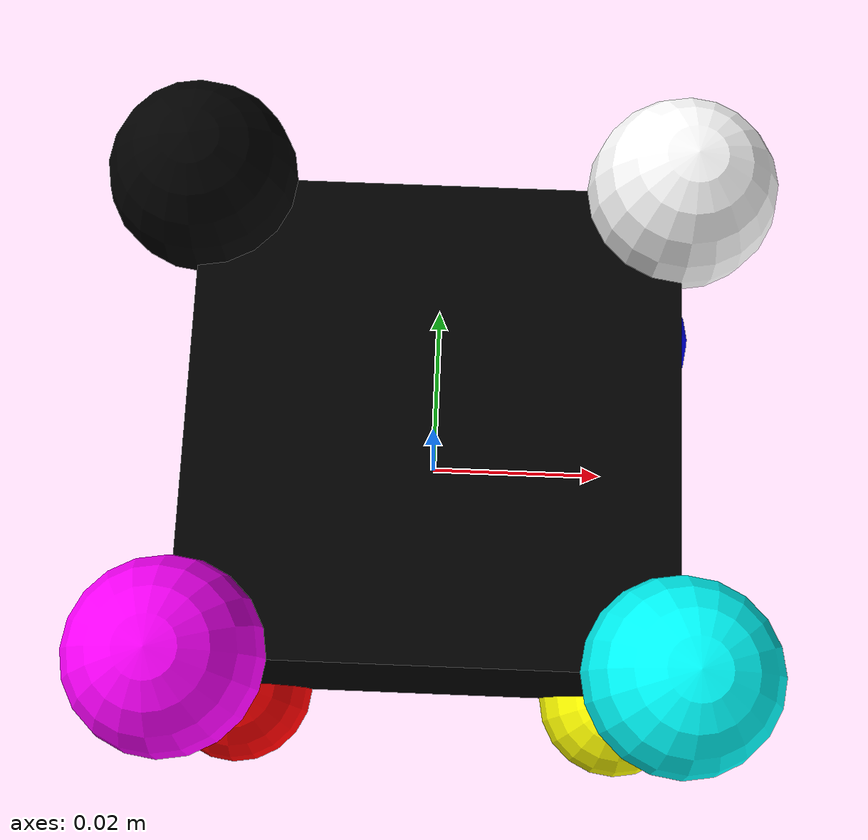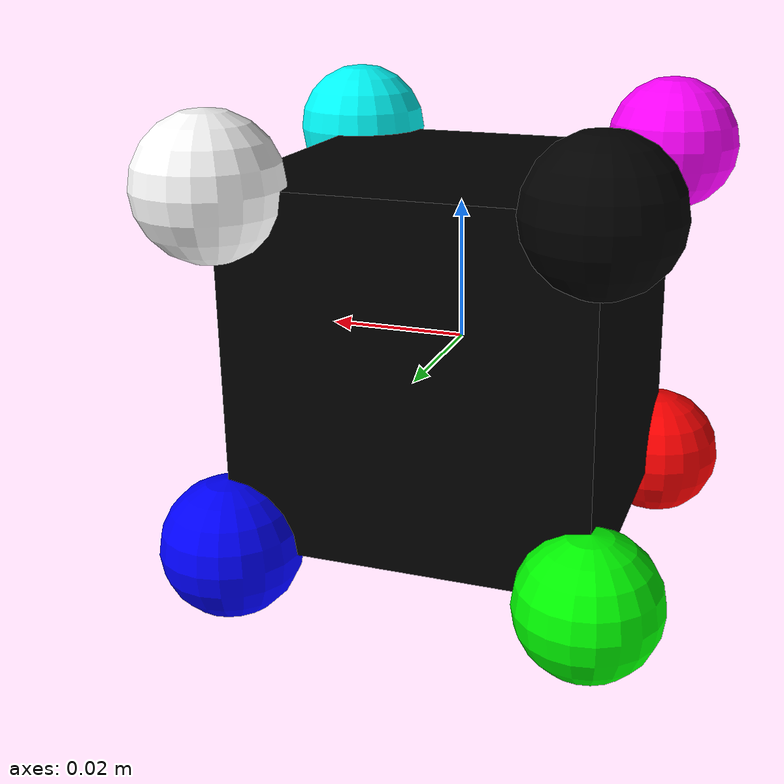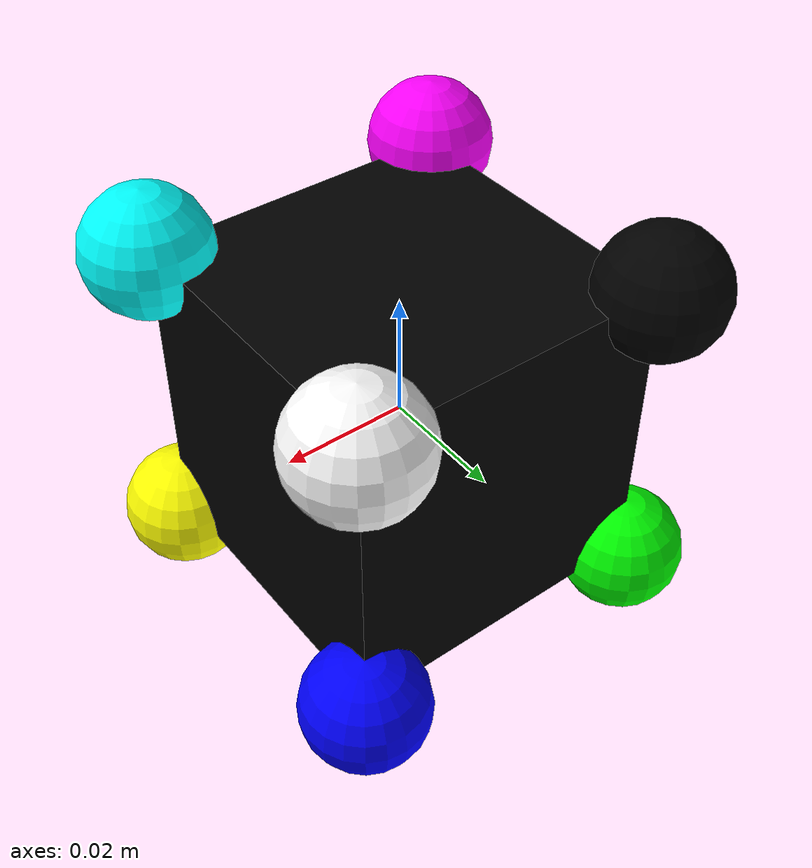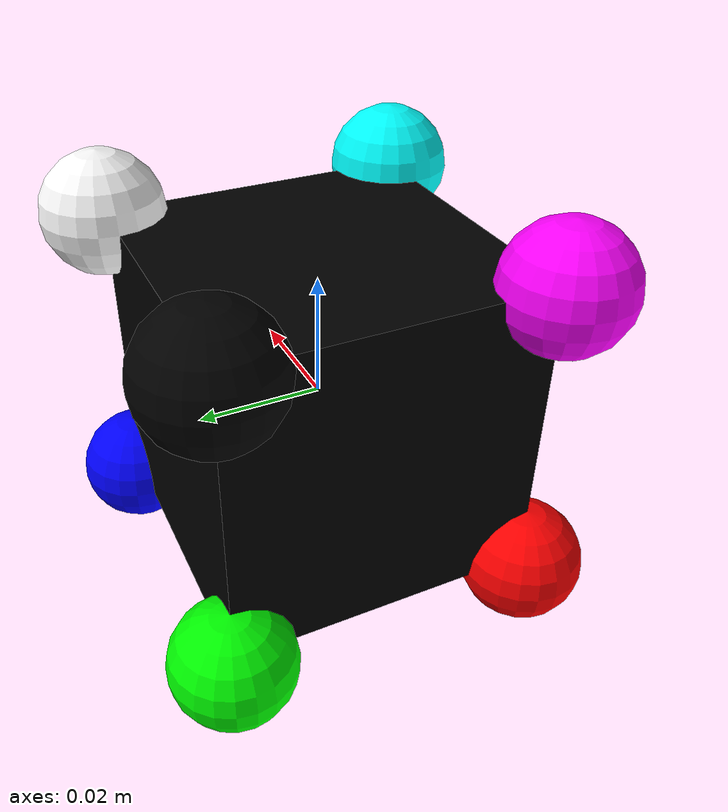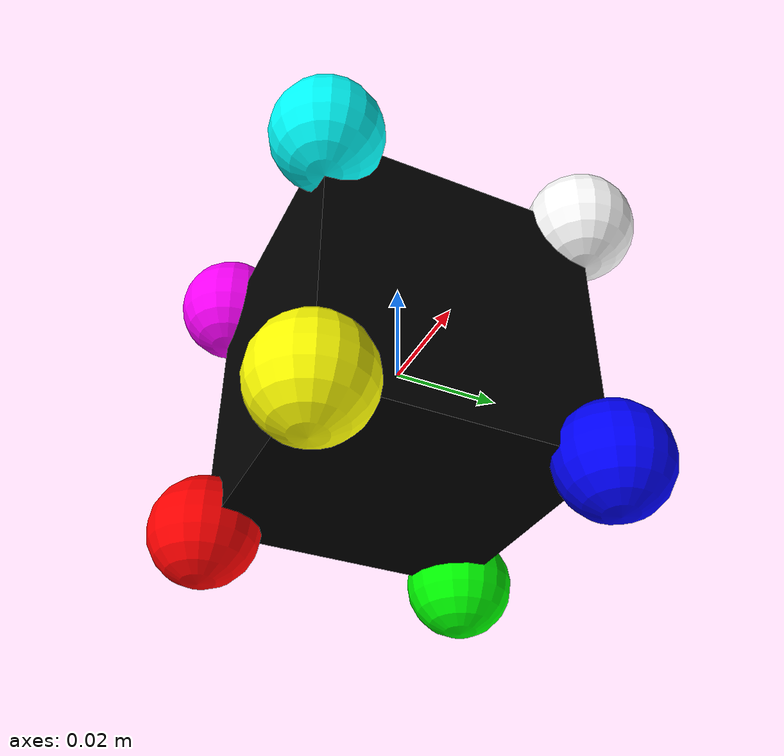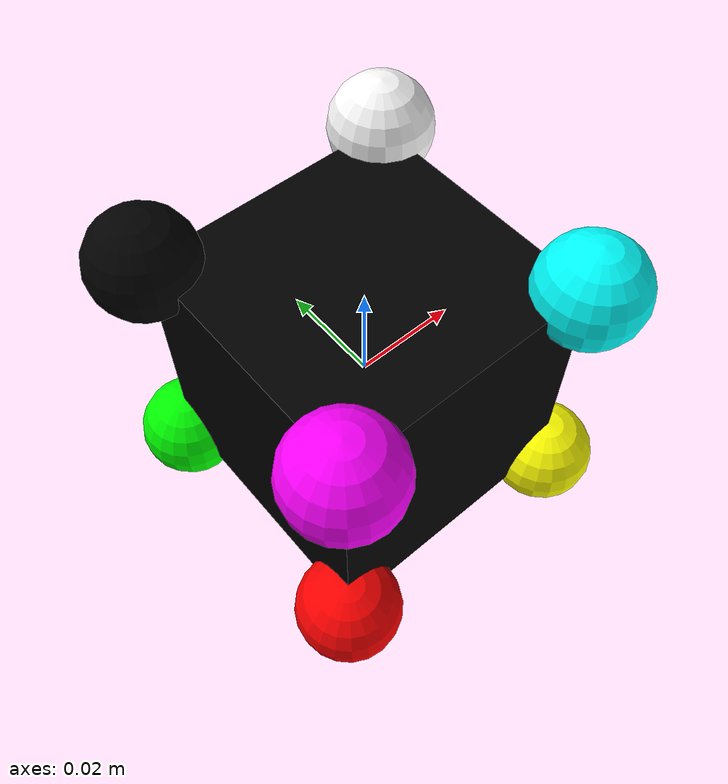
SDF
<?xml version="1.0"?>
<sdf version="1.7">
  <model name="cube">

    <link name="cube">

      <inertial>
        <pose>0 0 0 0 0 0</pose>

        <!-- Example mass -->
        <mass>0.05</mass>

        <!-- Solid cube inertia:
             I = (1/6) m a²
             a = 0.0254 m
             m = 0.05 kg
        -->
        <inertia>
          <ixx>5.3763e-06</ixx>
          <iyy>5.3763e-06</iyy>
          <izz>5.3763e-06</izz>
          <ixy>0</ixy>
          <ixz>0</ixz>
          <iyz>0</iyz>
        </inertia>
      </inertial>

      <visual name="cube_visual">
        <pose>0 0 0 0 0 0</pose>
        <geometry>
  <box>
    <size>0.0508 0.0508 0.0508</size>
  </box>
</geometry>

        <material>
          <diffuse>0 0 0 1</diffuse>
        </material>
      </visual>

      <collision name="cube_collision">
        <pose>0 0 0 0 0 0</pose>

        <geometry>
          <box>
            <size>0.0508 0.0508 0.0508</size>
          </box>
        </geometry>

        <drake:proximity_properties xmlns:drake="uri:drake">
          <drake:compliant_hydroelastic/>
          <drake:hydroelastic_modulus>3.0e7</drake:hydroelastic_modulus>
          <drake:mesh_resolution_hint>0.025</drake:mesh_resolution_hint>
          <drake:hunt_crossley_dissipation>10</drake:hunt_crossley_dissipation>
          <drake:mu_dynamic>0.3</drake:mu_dynamic>
        </drake:proximity_properties>

      </collision>

      <visual name="corner_0">
        <geometry>
          <sphere>
            <radius>0.01</radius>
          </sphere>
        </geometry>

        <material>
          <diffuse>1 0 0 1</diffuse>
        </material>

        <pose>-0.0254 -0.0254 -0.0254 0 0 0</pose>
      </visual>

      <visual name="corner_1">
        <geometry>
          <sphere>
            <radius>0.01</radius>
          </sphere>
        </geometry>

        <material>
          <diffuse>0 1 0 1</diffuse>
        </material>

        <pose>-0.0254 0.0254 -0.0254 0 0 0</pose>
      </visual>

      <visual name="corner_2">
        <geometry>
          <sphere>
            <radius>0.01</radius>
          </sphere>
        </geometry>

        <material>
          <diffuse>0 0 1 1</diffuse>
        </material>

        <pose>0.0254 0.0254 -0.0254 0 0 0</pose>
      </visual>

      <visual name="corner_3">
        <geometry>
          <sphere>
            <radius>0.01</radius>
          </sphere>
        </geometry>

        <material>
          <diffuse>1 1 0 1</diffuse>
        </material>

        <pose>0.0254 -0.0254 -0.0254 0 0 0</pose>
      </visual>
      <visual name="corner_4">
        <geometry>
          <sphere>
            <radius>0.01</radius>
          </sphere>
        </geometry>

        <material>
          <diffuse>1 0 1 1</diffuse>
        </material>

        <pose>-0.0254 -0.0254 0.0254 0 0 0</pose>
      </visual>
      <visual name="corner_5">
        <geometry>
          <sphere>
            <radius>0.01</radius>
          </sphere>
        </geometry>
        <material>
          <diffuse>0 1 1 1</diffuse>
        </material>

        <pose>0.0254 -0.0254 0.0254 0 0 0</pose>
      </visual>
      <visual name="corner_6">
        <geometry>
          <sphere>
            <radius>0.01</radius>
          </sphere>
        </geometry>
        <material>
          <diffuse>1 1 1 1</diffuse>
        </material>

        <pose>0.0254 0.0254 0.0254 0 0 0</pose>
      </visual>
      <visual name="corner_7">
        <geometry>
          <sphere>
            <radius>0.01</radius>
          </sphere>
        </geometry>
        <material>
          <diffuse>0 0 0 1</diffuse>
        </material>

        <pose>-0.0254 0.0254 0.0254 0 0 0</pose>
      </visual>

    </link>

  </model>
</sdf>
